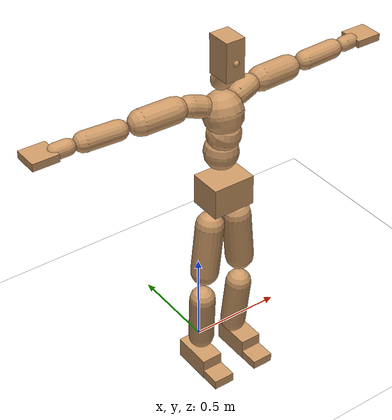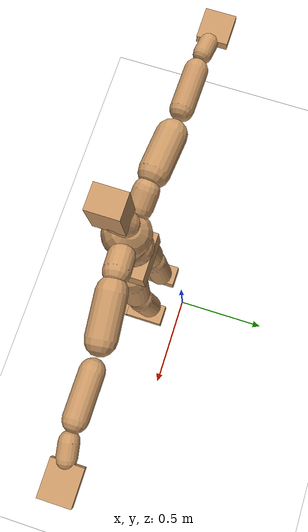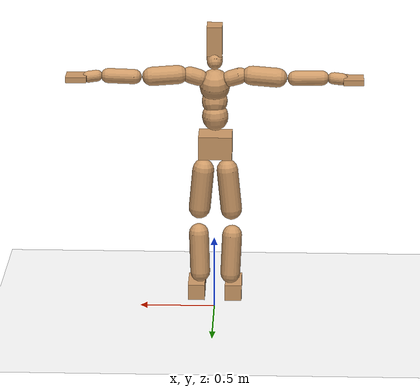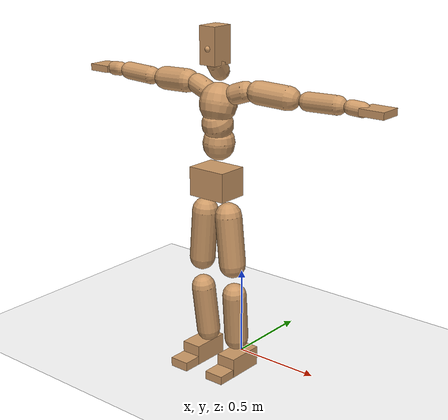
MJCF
<mujoco model="humanoid">
  <option integrator="implicitfast" />

  <visual>
    <global offwidth="1280" offheight="960" />
    <headlight active="1" ambient="0.34 0.34 0.34" diffuse="0.5 0.5 0.5" />
  </visual>

  <default>
    <joint damping="2" stiffness="2" armature="0.01" limited="true" solimplimit="0 .99 .01" />
    <geom condim="1" friction="0.7 0.005 0.0001" solimp=".99 .99 .003" solref="0.015 1" margin="0.001" rgba="0.8 0.6 .4 1" />
    <default class="smplcontact">
      <geom condim="3" friction="1. 0.005 0.0001" solref="0.015 1" solimp="0.98 0.98 0.001" priority="1" />
    </default>
    <default class="stiff_medium">
      <joint stiffness="10" />
    </default>
    <default class="stiff_medium_higher">
      <joint stiffness="50" />
    </default>
    <default class="stiff_high">
      <joint stiffness="100" />
    </default>
  </default>

  <asset>
    <texture type="skybox" builtin="gradient" rgb1="0.99 0.99 0.99" rgb2="0.608 0.828 0.892" width="100" />
    <texture builtin="flat" height="1278" mark="cross" markrgb="1 1 1" name="texgeom" random="0.01" rgb1="0.8 0.6 0.4" rgb2="0.8 0.6 0.4" type="cube" width="127" />
    <texture name="texplane" type="2d" builtin="checker" markrgb="1 1 1" rgb1="0.756 0.772 0.76" rgb2="0.6 0.6 0.6" width="100" height="100" />
    <material name="MatPlane" reflectance="0.5" texture="texplane" texrepeat="1 1" texuniform="true" />
    <material name="geom" texture="texgeom" texuniform="true" />
  </asset>

  <worldbody>
    <light name="tracking_light" pos="0 0 7" dir="0 0 -1" directional="true" cutoff="100" exponent="1" diffuse="1 1 1" specular="0.1 0.1 0.1" mode="trackcom" />
    <camera name="back" pos="0 3 2.4" xyaxes="-1 0 0 0 -1 2" mode="trackcom" />
    <camera name="side" pos="-3 0 2.4" xyaxes="0 -1 0 1 0 2" mode="trackcom" />
    <camera name="front_side" pos="-2.8 -2.8 0.8" xyaxes="0.5 -0.5 0 0.1 0.1 1" mode="trackcom" />
    <geom condim="3" name="floor" pos="0 0 0" rgba="1 1 1 1" size="100 100 .2" type="plane" material="MatPlane" />
    <body name="Pelvis" pos="-0.0018 -0.2233 1.10049" euler="90 0 0">
      <site name="Pelvis" size="0.01" />
      <freejoint name="Pelvis" />
      <geom type="box" pos="0 -0.0133631 -0.0057717" size="0.112181 0.0797369 0.0871002" quat="1.0000 0.0000 0.0000 0.0000" density="3165.830099" name="Pelvis" />
      <body name="L_Hip" pos="0.0729333 -0.100941 -0.00713592">
        <joint name="L_Hip_x" type="hinge" pos="0 0 0" axis="1 0 0" stiffness="10" range="-160.0 22.92" class="stiff_medium" damping="15" />
        <joint name="L_Hip_y" type="hinge" pos="0 0 0" axis="0 1 0" stiffness="10" range="-70.0 70.0" class="stiff_medium" damping="10" />
        <joint name="L_Hip_z" type="hinge" pos="0 0 0" axis="0 0 1" stiffness="10" range="-28.65 90.0" class="stiff_medium" damping="10" />
        <geom type="capsule" density="2040.816327" fromto="0.00843343 -0.0916935 -0.0011003 0.0334963 -0.367018 -0.00440125" size="0.0731788" name="L_Hip" />
        <body name="L_Knee" pos="0.0419297 -0.458711 -0.00550155">
          <joint name="L_Knee_x" type="hinge" pos="0 0 0" axis="1 0 0" range="-5.16 171.89" damping="8" />
          <joint name="L_Knee_y" type="hinge" pos="0 0 0" axis="0 1 0" range="-4.58 6.88" damping="8" />
          <joint name="L_Knee_z" type="hinge" pos="0 0 0" axis="0 0 1" range="-6.88 4.58" damping="8" />
          <geom type="capsule" density="1234.567901" fromto="-0.00308972 -0.0911783 -0.00995944 -0.0124824 -0.364711 -0.0400847" size="0.0668622" name="L_Knee" />
          <body name="L_Ankle" pos="-0.0155721 -0.455889 -0.0500441">
            <joint name="L_Ankle_x" type="hinge" pos="0 0 0" axis="1 0 0" range="-45.84 45.84" class="stiff_medium" damping="6" />
            <joint name="L_Ankle_y" type="hinge" pos="0 0 0" axis="0 1 0" range="-74.48 22.92" class="stiff_medium" damping="3" />
            <joint name="L_Ankle_z" type="hinge" pos="0 0 0" axis="0 0 1" range="-4.58 4.58" class="stiff_medium" damping="6" />
            <geom type="box" pos="0.0273169 -0.0280204 0.0301172" size="0.0566269 0.0543994 0.105783" quat="1.0000 0.0000 0.0000 0.0000" density="449.071558" name="L_Ankle" class="smplcontact" />
            <body name="L_Toe" pos="0.0309514 -0.0654199 0.14847">
              <joint name="L_Toe_x" type="hinge" pos="0 0 0" axis="1 0 0" range="-91.67 22.92" />
              <joint name="L_Toe_y" type="hinge" pos="0 0 0" axis="0 1 0" range="-4.58 4.58" />
              <joint name="L_Toe_z" type="hinge" pos="0 0 0" axis="0 0 1" range="-4.58 4.58" />
              <geom type="box" pos="-0.0035172 0.0064482 0.0308639" size="0.0560407 0.023448 0.0617277" quat="1.0000 0.0000 0.0000 0.0000" density="423.206892" name="L_Toe" class="smplcontact" />
            </body>
          </body>
        </body>
      </body>
      <body name="R_Hip" pos="-0.0710444 -0.0999472 -0.00451242">
        <joint name="R_Hip_x" type="hinge" pos="0 0 0" axis="1 0 0" stiffness="10" range="-160.0 22.92" class="stiff_medium" damping="15" />
        <joint name="R_Hip_y" type="hinge" pos="0 0 0" axis="0 1 0" stiffness="10" range="-70.0 70.0" class="stiff_medium" damping="10" />
        <joint name="R_Hip_z" type="hinge" pos="0 0 0" axis="0 0 1" stiffness="10" range="-90.0 28.65" class="stiff_medium" damping="10" />
        <geom type="capsule" density="2040.816327" fromto="-0.00941158 -0.0935274 -0.00219953 -0.0374086 -0.374231 -0.00867919" size="0.0721079" name="R_Hip" />
        <body name="R_Knee" pos="-0.0468202 -0.467759 -0.0108787">
          <joint name="R_Knee_x" type="hinge" pos="0 0 0" axis="1 0 0" range="-5.16 171.89" damping="8" />
          <joint name="R_Knee_y" type="hinge" pos="0 0 0" axis="0 1 0" range="-6.88 4.58" damping="8" />
          <joint name="R_Knee_z" type="hinge" pos="0 0 0" axis="0 0 1" range="-4.58 6.88" damping="8" />
          <geom type="capsule" density="1234.567901" fromto="0.00367131 -0.0912913 -0.00974192 0.0144385 -0.365053 -0.0387217" size="0.0668622" name="R_Knee" />
          <body name="R_Ankle" pos="0.0181098 -0.456344 -0.0484636">
            <joint name="R_Ankle_x" type="hinge" pos="0 0 0" axis="1 0 0" range="-45.84 45.84" class="stiff_medium" damping="6" />
            <joint name="R_Ankle_y" type="hinge" pos="0 0 0" axis="0 1 0" range="-22.92 74.48" class="stiff_medium" damping="3" />
            <joint name="R_Ankle_z" type="hinge" pos="0 0 0" axis="0 0 1" range="-4.58 4.58" class="stiff_medium" damping="6" />
            <geom type="box" pos="-0.0248549 -0.0203998 0.0318595" size="0.0566269 0.0560407 0.10765" quat="1.0000 0.0000 0.0000 0.0000" density="434.700981" name="R_Ankle" class="smplcontact" />
            <body name="R_Toe" pos="-0.029779 -0.0563924 0.153448">
              <joint name="R_Toe_x" type="hinge" pos="0 0 0" axis="1 0 0" range="-91.67 22.92" />
              <joint name="R_Toe_y" type="hinge" pos="0 0 0" axis="0 1 0" range="-4.58 4.58" />
              <joint name="R_Toe_z" type="hinge" pos="0 0 0" axis="0 0 1" range="-4.58 4.58" />
              <geom type="box" pos="0.00492408 0.0052758 0.0282504" size="0.056158 0.0253238 0.0613544" quat="1.0000 0.0000 0.0000 0.0000" density="407.384095" name="R_Toe" class="smplcontact" />
            </body>
          </body>
        </body>
      </body>
      <body name="Torso" pos="-0.0026235 0.120378 -0.028019">
        <joint name="Torso_x" type="hinge" pos="0 0 0" axis="1 0 0" range="-25.78 57.3" class="stiff_medium" damping="15" />
        <joint name="Torso_y" type="hinge" pos="0 0 0" axis="0 1 0" range="-57.3 57.3" class="stiff_high" damping="20" />
        <joint name="Torso_z" type="hinge" pos="0 0 0" axis="0 0 1" range="-34.38 34.38" class="stiff_high" damping="20" />
        <geom type="capsule" density="2040.816327" fromto="0.00275693 0.0668821 0.000551385 0.00330695 0.0817326 0.000661389" size="0.0867124" name="Torso" />
        <body name="Spine" pos="0.00606377 0.148725 0.00121275">
          <joint name="Spine_x" type="hinge" pos="0 0 0" axis="1 0 0" stiffness="10" range="-25.78 57.3" class="stiff_medium" damping="15" />
          <joint name="Spine_y" type="hinge" pos="0 0 0" axis="0 1 0" stiffness="10" range="-57.3 57.3" class="stiff_high" damping="8" />
          <joint name="Spine_z" type="hinge" pos="0 0 0" axis="0 0 1" stiffness="20" range="-34.38 34.38" class="stiff_high" damping="12" />
          <geom type="capsule" density="2040.816327" fromto="0.000776998 0.0261838 0.0125343 0.000887002 0.032014 0.0153944" size="0.0851338" name="Spine" />
          <body name="Chest" pos="0.001664 0.0581978 0.0279286">
            <joint name="Chest_x" type="hinge" pos="0 0 0" axis="1 0 0" stiffness="10" range="-25.78 57.3" class="stiff_medium" damping="15" />
            <joint name="Chest_y" type="hinge" pos="0 0 0" axis="0 1 0" stiffness="10" range="-57.3 57.3" class="stiff_high" damping="8" />
            <joint name="Chest_z" type="hinge" pos="0 0 0" axis="0 0 1" stiffness="20" range="-34.38 34.38" class="stiff_high" damping="12" />
            <geom type="capsule" density="2040.816327" fromto="-0.000948456 0.0750158 -0.0190581 -0.00105846 0.0916264 -0.0233482" size="0.100941" name="Chest" />
            <body name="Neck" pos="-0.00295012 0.235022 -0.048264">
              <joint name="Neck_x" type="hinge" pos="0 0 0" axis="1 0 0" range="-28.65 57.3" class="stiff_medium_higher" damping="10" />
              <joint name="Neck_y" type="hinge" pos="0 0 0" axis="0 1 0" range="-40.11 40.11" class="stiff_medium_higher" damping="10" />
              <joint name="Neck_z" type="hinge" pos="0 0 0" axis="0 0 1" range="-40.11 40.11" class="stiff_medium_higher" damping="10" />
              <geom type="capsule" density="1000" fromto="0.00122887 0.0159554 0.0126401 0.00503347 0.0638198 0.0504406" size="0.051509" name="Neck" />
              <body name="Head" pos="0.00638033 0.0797732 0.062961">
                <joint name="Head_x" type="hinge" pos="0 0 0" axis="1 0 0" range="-28.65 57.3" class="stiff_medium_higher" damping="2" />
                <joint name="Head_y" type="hinge" pos="0 0 0" axis="0 1 0" range="-40.11 40.11" class="stiff_medium_higher" damping="2" />
                <joint name="Head_z" type="hinge" pos="0 0 0" axis="0 0 1" range="-40.11 40.11" class="stiff_medium_higher" damping="2" />
                <geom type="box" pos="-0.00350658 0.0759744 -0.00968484" size="0.0505949 0.100085 0.0634524" quat="1.0000 0.0000 0.0000 0.0000" density="1018.069894" name="Head" />
                <geom type="capsule" name="nose" size="0.016698 0.008349" pos="0 0.0607101 0.041745" quat="1 0 0 0" mass="0" contype="0" conaffinity="0" />
              </body>
            </body>
            <body name="L_Thorax" pos="0.0793084 0.133889 -0.0372678">
              <joint name="L_Thorax_x" type="hinge" pos="0 0 0" axis="1 0 0" range="-10.89 4.58" class="stiff_medium_higher" damping="20" />
              <joint name="L_Thorax_y" type="hinge" pos="0 0 0" axis="0 1 0" range="-28.65 17.19" class="stiff_medium_higher" damping="20" />
              <joint name="L_Thorax_z" type="hinge" pos="0 0 0" axis="0 0 1" range="-31.51 40.11" class="stiff_medium_higher" damping="20" />
              <geom type="capsule" density="1000" fromto="0.0202997 0.00680373 -0.00200553 0.0811981 0.0272147 -0.00791692" size="0.0547832" name="L_Thorax" />
              <body name="L_Shoulder" pos="0.101498 0.0340185 -0.00992245">
                <joint name="L_Shoulder_x" type="hinge" pos="0 0 0" axis="1 0 0" range="-97.4 97.4" class="stiff_medium" damping="6" />
                <joint name="L_Shoulder_y" type="hinge" pos="0 0 0" axis="0 1 0" range="-108.86 80.21" class="stiff_medium" damping="6" />
                <joint name="L_Shoulder_z" type="hinge" pos="0 0 0" axis="0 0 1" range="-97.4 85.94" class="stiff_medium" damping="6" />
                <geom type="capsule" density="1000" fromto="0.0577314 -0.00289862 -0.00611831 0.231038 -0.0113526 -0.0244723" size="0.0624174" name="L_Shoulder" />
                <body name="L_Elbow" pos="0.288769 -0.0142512 -0.0305906">
                  <joint name="L_Elbow_x" type="hinge" pos="0 0 0" axis="1 0 0" range="-17.19 4.58" damping="5" />
                  <joint name="L_Elbow_y" type="hinge" pos="0 0 0" axis="0 1 0" range="-180.0 17.19" damping="5" />
                  <joint name="L_Elbow_z" type="hinge" pos="0 0 0" axis="0 0 1" range="-100.84 4.58" damping="5" />
                  <geom type="capsule" density="1000" fromto="0.0566461 0.00204762 -0.000225188 0.226812 0.00818996 -0.00102142" size="0.0488957" name="L_Elbow" />
                  <body name="L_Wrist" pos="0.283458 0.0102376 -0.00136734">
                    <joint name="L_Wrist_x" type="hinge" pos="0 0 0" axis="1 0 0" range="-180.0 22.92" />
                    <joint name="L_Wrist_y" type="hinge" pos="0 0 0" axis="0 1 0" range="-17.19 17.19" />
                    <joint name="L_Wrist_z" type="hinge" pos="0 0 0" axis="0 0 1" range="-22.92 22.92" />
                    <geom type="capsule" density="1000" fromto="0.0188616 -0.00179352 -0.00336814 0.0754455 -0.00729474 -0.0134724" size="0.0383921" name="L_Wrist" class="smplcontact" />
                    <body name="L_Hand" pos="0.0943078 -0.00920905 -0.0167199">
                      <joint name="L_Hand_x" type="hinge" pos="0 0 0" axis="1 0 0" range="-17.19 17.19" />
                      <joint name="L_Hand_y" type="hinge" pos="0 0 0" axis="0 1 0" range="-51.57 51.57" />
                      <joint name="L_Hand_z" type="hinge" pos="0 0 0" axis="0 0 1" range="-91.67 91.67" />
                      <geom type="box" pos="0.0578691 0.0011724 -0.00679992" size="0.0686682 0.0185239 0.0630751" quat="1.0000 0.0000 0.0000 0.0000" density="400.552564" name="L_Hand" class="smplcontact" />
                    </body>
                  </body>
                </body>
              </body>
            </body>
            <body name="R_Thorax" pos="-0.0824797 0.130909 -0.041786">
              <joint name="R_Thorax_x" type="hinge" pos="0 0 0" axis="1 0 0" range="-10.89 4.58" class="stiff_medium_higher" damping="20" />
              <joint name="R_Thorax_y" type="hinge" pos="0 0 0" axis="0 1 0" range="-17.19 28.65" class="stiff_medium_higher" damping="20" />
              <joint name="R_Thorax_z" type="hinge" pos="0 0 0" axis="0 0 1" range="-40.11 31.51" class="stiff_medium_higher" damping="20" />
              <geom type="capsule" density="1000" fromto="-0.0214147 0.00724975 -0.00200975 -0.0856592 0.0289992 -0.00814421" size="0.0537317" name="R_Thorax" />
              <body name="R_Shoulder" pos="-0.107076 0.0363547 -0.0101541">
                <joint name="R_Shoulder_x" type="hinge" pos="0 0 0" axis="1 0 0" range="-97.4 97.4" class="stiff_medium" damping="6" />
                <joint name="R_Shoulder_y" type="hinge" pos="0 0 0" axis="0 1 0" range="-80.21 108.86" class="stiff_medium" damping="6" />
                <joint name="R_Shoulder_z" type="hinge" pos="0 0 0" axis="0 0 1" range="-85.94 97.4" class="stiff_medium" damping="6" />
                <geom type="capsule" density="1000" fromto="-0.0563964 -0.00300686 -0.00478682 -0.22581 -0.0119058 -0.0190251" size="0.0641076" name="R_Shoulder" />
                <body name="R_Elbow" pos="-0.282207 -0.0147919 -0.023812">
                  <joint name="R_Elbow_x" type="hinge" pos="0 0 0" axis="1 0 0" range="-17.19 4.58" damping="5" />
                  <joint name="R_Elbow_y" type="hinge" pos="0 0 0" axis="0 1 0" range="-17.19 180.0" damping="5" />
                  <joint name="R_Elbow_z" type="hinge" pos="0 0 0" axis="0 0 1" range="-4.58 100.84" damping="5" />
                  <geom type="capsule" density="1000" fromto="-0.0581246 0.00182446 -0.00125111 -0.232271 0.00705683 -0.00500477" size="0.0492578" name="R_Elbow" />
                  <body name="R_Wrist" pos="-0.290396 0.00888129 -0.00637661">
                    <joint name="R_Wrist_x" type="hinge" pos="0 0 0" axis="1 0 0" range="-180.0 22.92" />
                    <joint name="R_Wrist_y" type="hinge" pos="0 0 0" axis="0 1 0" range="-17.19 17.19" />
                    <joint name="R_Wrist_z" type="hinge" pos="0 0 0" axis="0 0 1" range="-22.92 22.92" />
                    <geom type="capsule" density="1000" fromto="-0.0189734 -0.00134461 -0.00236081 -0.0760064 -0.00549859 -0.00932153" size="0.039358" name="R_Wrist" class="smplcontact" />
                    <body name="R_Hand" pos="-0.0949808 -0.00684327 -0.0115617">
                      <joint name="R_Hand_x" type="hinge" pos="0 0 0" axis="1 0 0" range="-17.19 17.19" />
                      <joint name="R_Hand_y" type="hinge" pos="0 0 0" axis="0 1 0" range="-51.57 51.57" />
                      <joint name="R_Hand_z" type="hinge" pos="0 0 0" axis="0 0 1" range="-91.67 91.67" />
                      <geom type="box" pos="-0.0542303 -0.00105516 -0.00926196" size="0.0667901 0.0192274 0.064013" quat="1.0000 0.0000 0.0000 0.0000" density="403.679611" name="R_Hand" class="smplcontact" />
                    </body>
                  </body>
                </body>
              </body>
            </body>
          </body>
        </body>
      </body>
    </body>
  </worldbody>
  <actuator>
    <general name="L_Hip_x" joint="L_Hip_x" biastype="affine" gainprm="287.33006409732246" biasprm="-215.3247604770444 -180 -2.0" ctrllimited="true" ctrlrange="-1 1" forcerange="-360 360" />
    <general name="L_Hip_y" joint="L_Hip_y" biastype="affine" gainprm="219.9114857512855" biasprm="0.0 -180 -2.0" ctrllimited="true" ctrlrange="-1 1" forcerange="-360 360" />
    <general name="L_Hip_z" joint="L_Hip_z" biastype="affine" gainprm="186.3749841742145" biasprm="96.3683546488669 -180 -2.0" ctrllimited="true" ctrlrange="-1 1" forcerange="-360 360" />
    <general name="L_Knee_x" joint="L_Knee_x" biastype="affine" gainprm="278.10948965903646" biasprm="261.8988715665131 -180 -2.0" ctrllimited="true" ctrlrange="-1 1" forcerange="-360 360" />
    <general name="L_Knee_y" joint="L_Knee_y" biastype="affine" gainprm="18.001325905069514" biasprm="3.612831551628262 -180 -2.0" ctrllimited="true" ctrlrange="-1 1" forcerange="-360 360" />
    <general name="L_Knee_z" joint="L_Knee_z" biastype="affine" gainprm="18.001325905069514" biasprm="-3.612831551628262 -180 -2.0" ctrllimited="true" ctrlrange="-1 1" forcerange="-360 360" />
    <general name="L_Ankle_x" joint="L_Ankle_x" biastype="affine" gainprm="72.00530362027807" biasprm="0.0 -90 -2.0" ctrllimited="true" ctrlrange="-1 1" forcerange="-180 180" />
    <general name="L_Ankle_y" joint="L_Ankle_y" biastype="affine" gainprm="76.49778111491148" biasprm="-40.49512930477244 -90 -2.0" ctrllimited="true" ctrlrange="-1 1" forcerange="-180 180" />
    <general name="L_Ankle_z" joint="L_Ankle_z" biastype="affine" gainprm="7.1942471767206255" biasprm="0.0 -90 -2.0" ctrllimited="true" ctrlrange="-1 1" forcerange="-180 180" />
    <general name="L_Toe_x" joint="L_Toe_x" biastype="affine" gainprm="71.99902043497087" biasprm="-43.19689898685965 -72 -0.8" ctrllimited="true" ctrlrange="-1 1" forcerange="-144 144" />
    <general name="L_Toe_y" joint="L_Toe_y" biastype="affine" gainprm="5.755397741376501" biasprm="0.0 -72 -0.8" ctrllimited="true" ctrlrange="-1 1" forcerange="-144 144" />
    <general name="L_Toe_z" joint="L_Toe_z" biastype="affine" gainprm="5.755397741376501" biasprm="0.0 -72 -0.8" ctrllimited="true" ctrlrange="-1 1" forcerange="-144 144" />
    <general name="R_Hip_x" joint="R_Hip_x" biastype="affine" gainprm="287.33006409732246" biasprm="-215.3247604770444 -180 -2.0" ctrllimited="true" ctrlrange="-1 1" forcerange="-360 360" />
    <general name="R_Hip_y" joint="R_Hip_y" biastype="affine" gainprm="219.9114857512855" biasprm="0.0 -180 -2.0" ctrllimited="true" ctrlrange="-1 1" forcerange="-360 360" />
    <general name="R_Hip_z" joint="R_Hip_z" biastype="affine" gainprm="186.3749841742145" biasprm="-96.3683546488669 -180 -2.0" ctrllimited="true" ctrlrange="-1 1" forcerange="-360 360" />
    <general name="R_Knee_x" joint="R_Knee_x" biastype="affine" gainprm="278.10948965903646" biasprm="261.8988715665131 -180 -2.0" ctrllimited="true" ctrlrange="-1 1" forcerange="-360 360" />
    <general name="R_Knee_y" joint="R_Knee_y" biastype="affine" gainprm="18.001325905069514" biasprm="-3.612831551628262 -180 -2.0" ctrllimited="true" ctrlrange="-1 1" forcerange="-360 360" />
    <general name="R_Knee_z" joint="R_Knee_z" biastype="affine" gainprm="18.001325905069514" biasprm="3.612831551628262 -180 -2.0" ctrllimited="true" ctrlrange="-1 1" forcerange="-360 360" />
    <general name="R_Ankle_x" joint="R_Ankle_x" biastype="affine" gainprm="72.00530362027807" biasprm="0.0 -90 -2.0" ctrllimited="true" ctrlrange="-1 1" forcerange="-180 180" />
    <general name="R_Ankle_y" joint="R_Ankle_y" biastype="affine" gainprm="76.49778111491148" biasprm="40.49512930477244 -90 -2.0" ctrllimited="true" ctrlrange="-1 1" forcerange="-180 180" />
    <general name="R_Ankle_z" joint="R_Ankle_z" biastype="affine" gainprm="7.1942471767206255" biasprm="0.0 -90 -2.0" ctrllimited="true" ctrlrange="-1 1" forcerange="-180 180" />
    <general name="R_Toe_x" joint="R_Toe_x" biastype="affine" gainprm="71.99902043497087" biasprm="-43.19689898685965 -72 -0.8" ctrllimited="true" ctrlrange="-1 1" forcerange="-144 144" />
    <general name="R_Toe_y" joint="R_Toe_y" biastype="affine" gainprm="5.755397741376501" biasprm="0.0 -72 -0.8" ctrllimited="true" ctrlrange="-1 1" forcerange="-144 144" />
    <general name="R_Toe_z" joint="R_Toe_z" biastype="affine" gainprm="5.755397741376501" biasprm="0.0 -72 -0.8" ctrllimited="true" ctrlrange="-1 1" forcerange="-144 144" />
    <general name="Torso_x" joint="Torso_x" biastype="affine" gainprm="174.00234510682668" biasprm="66.0153336274335 -240 -4.0" ctrllimited="true" ctrlrange="-1 1" forcerange="-360 360" />
    <general name="Torso_y" joint="Torso_y" biastype="affine" gainprm="240.0176787342602" biasprm="0.0 -240 -4.0" ctrllimited="true" ctrlrange="-1 1" forcerange="-360 360" />
    <general name="Torso_z" joint="Torso_z" biastype="affine" gainprm="144.01060724055614" biasprm="0.0 -240 -4.0" ctrllimited="true" ctrlrange="-1 1" forcerange="-360 360" />
    <general name="Spine_x" joint="Spine_x" biastype="affine" gainprm="174.00234510682668" biasprm="66.0153336274335 -240 -4.0" ctrllimited="true" ctrlrange="-1 1" forcerange="-360 360" />
    <general name="Spine_y" joint="Spine_y" biastype="affine" gainprm="240.0176787342602" biasprm="0.0 -240 -4.0" ctrllimited="true" ctrlrange="-1 1" forcerange="-360 360" />
    <general name="Spine_z" joint="Spine_z" biastype="affine" gainprm="144.01060724055614" biasprm="0.0 -240 -4.0" ctrllimited="true" ctrlrange="-1 1" forcerange="-360 360" />
    <general name="Chest_x" joint="Chest_x" biastype="affine" gainprm="174.00234510682668" biasprm="66.0153336274335 -240 -4.0" ctrllimited="true" ctrlrange="-1 1" forcerange="-360 360" />
    <general name="Chest_y" joint="Chest_y" biastype="affine" gainprm="240.0176787342602" biasprm="0.0 -240 -4.0" ctrllimited="true" ctrlrange="-1 1" forcerange="-360 360" />
    <general name="Chest_z" joint="Chest_z" biastype="affine" gainprm="144.01060724055614" biasprm="0.0 -240 -4.0" ctrllimited="true" ctrlrange="-1 1" forcerange="-360 360" />
    <general name="Neck_x" joint="Neck_x" biastype="affine" gainprm="27.00198885760427" biasprm="9.000662952534757 -36 -0.8" ctrllimited="true" ctrlrange="-1 1" forcerange="-72 72" />
    <general name="Neck_y" joint="Neck_y" biastype="affine" gainprm="25.20185626709732" biasprm="0.0 -36 -0.8" ctrllimited="true" ctrlrange="-1 1" forcerange="-72 72" />
    <general name="Neck_z" joint="Neck_z" biastype="affine" gainprm="25.20185626709732" biasprm="0.0 -36 -0.8" ctrllimited="true" ctrlrange="-1 1" forcerange="-72 72" />
    <general name="Head_x" joint="Head_x" biastype="affine" gainprm="18.001325905069514" biasprm="6.000441968356505 -24 -0.8" ctrllimited="true" ctrlrange="-1 1" forcerange="-48 48" />
    <general name="Head_y" joint="Head_y" biastype="affine" gainprm="16.801237511398213" biasprm="0.0 -24 -0.8" ctrllimited="true" ctrlrange="-1 1" forcerange="-48 48" />
    <general name="Head_z" joint="Head_z" biastype="affine" gainprm="16.801237511398213" biasprm="0.0 -24 -0.8" ctrllimited="true" ctrlrange="-1 1" forcerange="-48 48" />
    <general name="L_Thorax_x" joint="L_Thorax_x" biastype="affine" gainprm="16.200146117011364" biasprm="-6.6078165480505335 -120 -1.6" ctrllimited="true" ctrlrange="-1 1" forcerange="-240 240" />
    <general name="L_Thorax_y" joint="L_Thorax_y" biastype="affine" gainprm="48.00353574685204" biasprm="-12.00088393671301 -120 -1.6" ctrllimited="true" ctrlrange="-1 1" forcerange="-240 240" />
    <general name="L_Thorax_z" joint="L_Thorax_z" biastype="affine" gainprm="75.00028861670033" biasprm="9.00589894029074 -120 -1.6" ctrllimited="true" ctrlrange="-1 1" forcerange="-240 240" />
    <general name="L_Shoulder_x" joint="L_Shoulder_x" biastype="affine" gainprm="81.5976331892389" biasprm="0.0 -48 -1.6" ctrllimited="true" ctrlrange="-1 1" forcerange="-96 96" />
    <general name="L_Shoulder_y" joint="L_Shoulder_y" biastype="affine" gainprm="79.19745640189629" biasprm="-12.00088393671301 -48 -1.6" ctrllimited="true" ctrlrange="-1 1" forcerange="-96 96" />
    <general name="L_Shoulder_z" joint="L_Shoulder_z" biastype="affine" gainprm="76.79727961455369" biasprm="-4.800353574685214 -48 -1.6" ctrllimited="true" ctrlrange="-1 1" forcerange="-96 96" />
    <general name="L_Elbow_x" joint="L_Elbow_x" biastype="affine" gainprm="13.67849441372996" biasprm="-7.923096672353461 -72 -0.8" ctrllimited="true" ctrlrange="-1 1" forcerange="-144 144" />
    <general name="L_Elbow_y" joint="L_Elbow_y" biastype="affine" gainprm="123.89813107227425" biasprm="-102.29653998619085 -72 -0.8" ctrllimited="true" ctrlrange="-1 1" forcerange="-144 144" />
    <general name="L_Elbow_z" joint="L_Elbow_z" biastype="affine" gainprm="66.23733950828719" biasprm="-60.4819417669107 -72 -0.8" ctrllimited="true" ctrlrange="-1 1" forcerange="-144 144" />
    <general name="L_Wrist_x" joint="L_Wrist_x" biastype="affine" gainprm="21.24973270888136" biasprm="-16.449379134196157 -12 -0.8" ctrllimited="true" ctrlrange="-1 1" forcerange="-24 24" />
    <general name="L_Wrist_y" joint="L_Wrist_y" biastype="affine" gainprm="3.6002651810139037" biasprm="0.0 -12 -0.8" ctrllimited="true" ctrlrange="-1 1" forcerange="-24 24" />
    <general name="L_Wrist_z" joint="L_Wrist_z" biastype="affine" gainprm="4.800353574685205" biasprm="0.0 -12 -0.8" ctrllimited="true" ctrlrange="-1 1" forcerange="-24 24" />
    <general name="L_Hand_x" joint="L_Hand_x" biastype="affine" gainprm="3.6002651810139037" biasprm="0.0 -12 -0.8" ctrllimited="true" ctrlrange="-1 1" forcerange="-24 24" />
    <general name="L_Hand_y" joint="L_Hand_y" biastype="affine" gainprm="10.800795543041708" biasprm="0.0 -12 -0.8" ctrllimited="true" ctrlrange="-1 1" forcerange="-24 24" />
    <general name="L_Hand_z" joint="L_Hand_z" biastype="affine" gainprm="19.199319903638422" biasprm="0.0 -12 -0.8" ctrllimited="true" ctrlrange="-1 1" forcerange="-24 24" />
    <general name="R_Thorax_x" joint="R_Thorax_x" biastype="affine" gainprm="16.200146117011364" biasprm="-6.6078165480505335 -120 -1.6" ctrllimited="true" ctrlrange="-1 1" forcerange="-240 240" />
    <general name="R_Thorax_y" joint="R_Thorax_y" biastype="affine" gainprm="48.00353574685204" biasprm="12.000883936713002 -120 -1.6" ctrllimited="true" ctrlrange="-1 1" forcerange="-240 240" />
    <general name="R_Thorax_z" joint="R_Thorax_z" biastype="affine" gainprm="75.00028861670033" biasprm="-9.00589894029074 -120 -1.6" ctrllimited="true" ctrlrange="-1 1" forcerange="-240 240" />
    <general name="R_Shoulder_x" joint="R_Shoulder_x" biastype="affine" gainprm="81.5976331892389" biasprm="0.0 -48 -1.6" ctrllimited="true" ctrlrange="-1 1" forcerange="-96 96" />
    <general name="R_Shoulder_y" joint="R_Shoulder_y" biastype="affine" gainprm="79.19745640189629" biasprm="12.00088393671301 -48 -1.6" ctrllimited="true" ctrlrange="-1 1" forcerange="-96 96" />
    <general name="R_Shoulder_z" joint="R_Shoulder_z" biastype="affine" gainprm="76.79727961455369" biasprm="4.800353574685204 -48 -1.6" ctrllimited="true" ctrlrange="-1 1" forcerange="-96 96" />
    <general name="R_Elbow_x" joint="R_Elbow_x" biastype="affine" gainprm="13.67849441372996" biasprm="-7.923096672353461 -72 -0.8" ctrllimited="true" ctrlrange="-1 1" forcerange="-144 144" />
    <general name="R_Elbow_y" joint="R_Elbow_y" biastype="affine" gainprm="123.89813107227425" biasprm="102.29653998619085 -72 -0.8" ctrllimited="true" ctrlrange="-1 1" forcerange="-144 144" />
    <general name="R_Elbow_z" joint="R_Elbow_z" biastype="affine" gainprm="66.23733950828719" biasprm="60.481941766910694 -72 -0.8" ctrllimited="true" ctrlrange="-1 1" forcerange="-144 144" />
    <general name="R_Wrist_x" joint="R_Wrist_x" biastype="affine" gainprm="21.24973270888136" biasprm="-16.449379134196157 -12 -0.8" ctrllimited="true" ctrlrange="-1 1" forcerange="-24 24" />
    <general name="R_Wrist_y" joint="R_Wrist_y" biastype="affine" gainprm="3.6002651810139037" biasprm="0.0 -12 -0.8" ctrllimited="true" ctrlrange="-1 1" forcerange="-24 24" />
    <general name="R_Wrist_z" joint="R_Wrist_z" biastype="affine" gainprm="4.800353574685205" biasprm="0.0 -12 -0.8" ctrllimited="true" ctrlrange="-1 1" forcerange="-24 24" />
    <general name="R_Hand_x" joint="R_Hand_x" biastype="affine" gainprm="3.6002651810139037" biasprm="0.0 -12 -0.8" ctrllimited="true" ctrlrange="-1 1" forcerange="-24 24" />
    <general name="R_Hand_y" joint="R_Hand_y" biastype="affine" gainprm="10.800795543041708" biasprm="0.0 -12 -0.8" ctrllimited="true" ctrlrange="-1 1" forcerange="-24 24" />
    <general name="R_Hand_z" joint="R_Hand_z" biastype="affine" gainprm="19.199319903638422" biasprm="0.0 -12 -0.8" ctrllimited="true" ctrlrange="-1 1" forcerange="-24 24" />
  </actuator>
  <contact>
    <exclude body1="Torso" body2="Chest" />
    <exclude body1="Head" body2="Chest" />
    <exclude body1="R_Knee" body2="R_Toe" />
    <exclude body1="R_Knee" body2="L_Ankle" />
    <exclude body1="R_Knee" body2="L_Toe" />
    <exclude body1="L_Knee" body2="L_Toe" />
    <exclude body1="L_Knee" body2="R_Ankle" />
    <exclude body1="L_Knee" body2="R_Toe" />
    <exclude body1="L_Shoulder" body2="Chest" />
    <exclude body1="R_Shoulder" body2="Chest" />
  </contact>
  <sensor>
    <framelinvel name="sensor_Pelvis_framelinvel" objtype="xbody" objname="Pelvis" />
    <framelinvel name="sensor_L_Hip_framelinvel" objtype="xbody" objname="L_Hip" />
    <framelinvel name="sensor_L_Knee_framelinvel" objtype="xbody" objname="L_Knee" />
    <framelinvel name="sensor_L_Ankle_framelinvel" objtype="xbody" objname="L_Ankle" />
    <framelinvel name="sensor_L_Toe_framelinvel" objtype="xbody" objname="L_Toe" />
    <framelinvel name="sensor_R_Hip_framelinvel" objtype="xbody" objname="R_Hip" />
    <framelinvel name="sensor_R_Knee_framelinvel" objtype="xbody" objname="R_Knee" />
    <framelinvel name="sensor_R_Ankle_framelinvel" objtype="xbody" objname="R_Ankle" />
    <framelinvel name="sensor_R_Toe_framelinvel" objtype="xbody" objname="R_Toe" />
    <framelinvel name="sensor_Torso_framelinvel" objtype="xbody" objname="Torso" />
    <framelinvel name="sensor_Spine_framelinvel" objtype="xbody" objname="Spine" />
    <framelinvel name="sensor_Chest_framelinvel" objtype="xbody" objname="Chest" />
    <framelinvel name="sensor_Neck_framelinvel" objtype="xbody" objname="Neck" />
    <framelinvel name="sensor_Head_framelinvel" objtype="xbody" objname="Head" />
    <framelinvel name="sensor_L_Thorax_framelinvel" objtype="xbody" objname="L_Thorax" />
    <framelinvel name="sensor_L_Shoulder_framelinvel" objtype="xbody" objname="L_Shoulder" />
    <framelinvel name="sensor_L_Elbow_framelinvel" objtype="xbody" objname="L_Elbow" />
    <framelinvel name="sensor_L_Wrist_framelinvel" objtype="xbody" objname="L_Wrist" />
    <framelinvel name="sensor_L_Hand_framelinvel" objtype="xbody" objname="L_Hand" />
    <framelinvel name="sensor_R_Thorax_framelinvel" objtype="xbody" objname="R_Thorax" />
    <framelinvel name="sensor_R_Shoulder_framelinvel" objtype="xbody" objname="R_Shoulder" />
    <framelinvel name="sensor_R_Elbow_framelinvel" objtype="xbody" objname="R_Elbow" />
    <framelinvel name="sensor_R_Wrist_framelinvel" objtype="xbody" objname="R_Wrist" />
    <framelinvel name="sensor_R_Hand_framelinvel" objtype="xbody" objname="R_Hand" />
    <frameangvel name="sensor_Pelvis_frameangvel" objtype="xbody" objname="Pelvis" />
    <frameangvel name="sensor_L_Hip_frameangvel" objtype="xbody" objname="L_Hip" />
    <frameangvel name="sensor_L_Knee_frameangvel" objtype="xbody" objname="L_Knee" />
    <frameangvel name="sensor_L_Ankle_frameangvel" objtype="xbody" objname="L_Ankle" />
    <frameangvel name="sensor_L_Toe_frameangvel" objtype="xbody" objname="L_Toe" />
    <frameangvel name="sensor_R_Hip_frameangvel" objtype="xbody" objname="R_Hip" />
    <frameangvel name="sensor_R_Knee_frameangvel" objtype="xbody" objname="R_Knee" />
    <frameangvel name="sensor_R_Ankle_frameangvel" objtype="xbody" objname="R_Ankle" />
    <frameangvel name="sensor_R_Toe_frameangvel" objtype="xbody" objname="R_Toe" />
    <frameangvel name="sensor_Torso_frameangvel" objtype="xbody" objname="Torso" />
    <frameangvel name="sensor_Spine_frameangvel" objtype="xbody" objname="Spine" />
    <frameangvel name="sensor_Chest_frameangvel" objtype="xbody" objname="Chest" />
    <frameangvel name="sensor_Neck_frameangvel" objtype="xbody" objname="Neck" />
    <frameangvel name="sensor_Head_frameangvel" objtype="xbody" objname="Head" />
    <frameangvel name="sensor_L_Thorax_frameangvel" objtype="xbody" objname="L_Thorax" />
    <frameangvel name="sensor_L_Shoulder_frameangvel" objtype="xbody" objname="L_Shoulder" />
    <frameangvel name="sensor_L_Elbow_frameangvel" objtype="xbody" objname="L_Elbow" />
    <frameangvel name="sensor_L_Wrist_frameangvel" objtype="xbody" objname="L_Wrist" />
    <frameangvel name="sensor_L_Hand_frameangvel" objtype="xbody" objname="L_Hand" />
    <frameangvel name="sensor_R_Thorax_frameangvel" objtype="xbody" objname="R_Thorax" />
    <frameangvel name="sensor_R_Shoulder_frameangvel" objtype="xbody" objname="R_Shoulder" />
    <frameangvel name="sensor_R_Elbow_frameangvel" objtype="xbody" objname="R_Elbow" />
    <frameangvel name="sensor_R_Wrist_frameangvel" objtype="xbody" objname="R_Wrist" />
    <frameangvel name="sensor_R_Hand_frameangvel" objtype="xbody" objname="R_Hand" />
    <subtreelinvel name="Chest_subtreelinvel" body="Chest" />
    <gyro name="Pelvis_gyro" site="Pelvis" />
  </sensor>
</mujoco>
